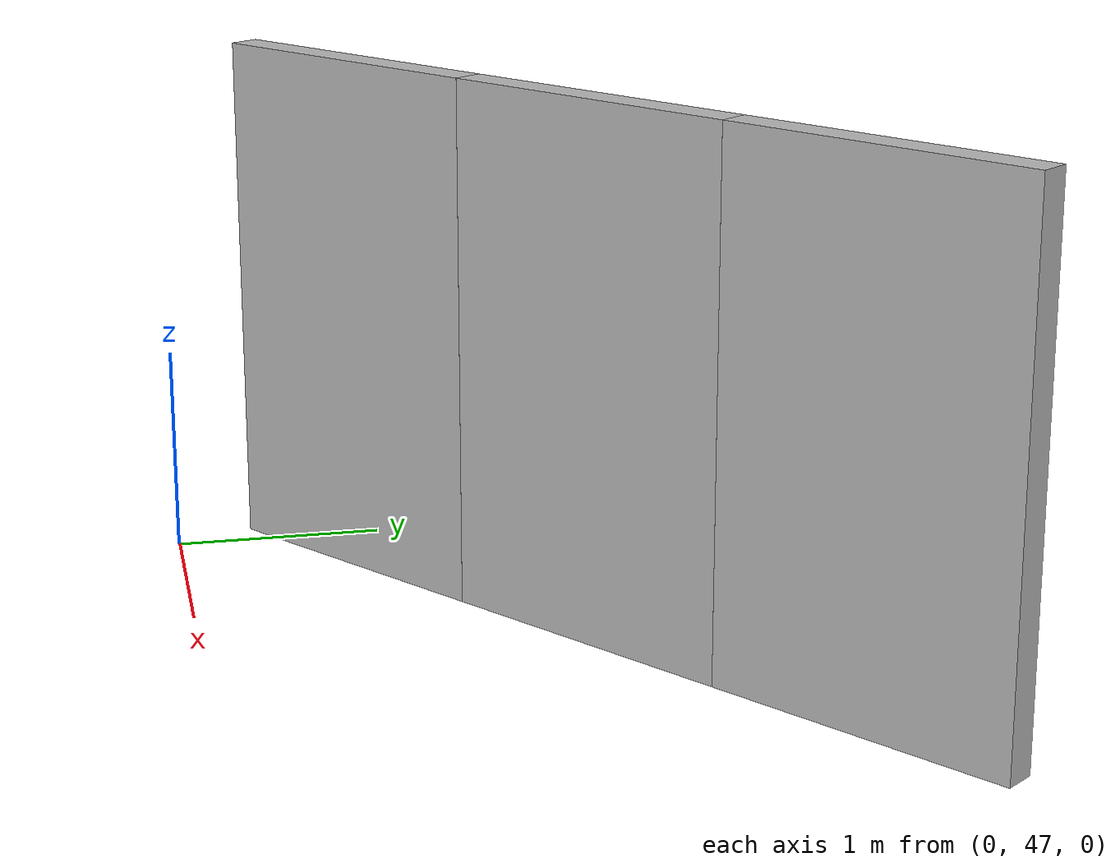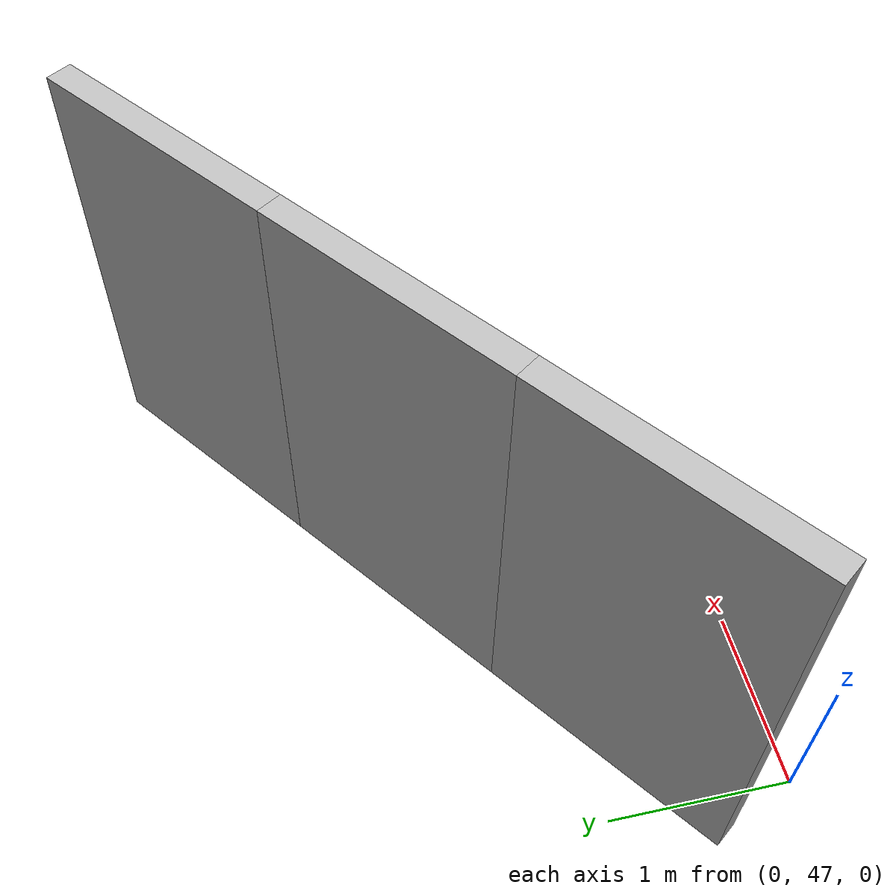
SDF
<?xml version="1.0" ?>
<sdf version="1.6">
  <model name="sps_3706">
    <pose frame="">0 0 0 0 -0 0</pose>
    <static>1</static>
    <self_collide>0</self_collide>
    <allow_auto_disable>0</allow_auto_disable>
    <link name="Wall7838">
      <kinematic>0</kinematic>
      <gravity>1</gravity>
      <self_collide>0</self_collide>
      <collision name="collision">
        <geometry>
          <box>
            <size>1.50299 0.15 2.5</size>
          </box>
        </geometry>
        <pose frame="">0 0 0 0 -0 0</pose>
      </collision>
      <visual name="visual">
        <geometry>
          <box>
            <size>1.50299 0.15 2.5</size>
          </box>
        </geometry>
        <pose frame="">0 0 0 0 -0 0</pose>
        <cast_shadows>1</cast_shadows>
        <transparency>0.0</transparency>
      </visual>
      <pose frame="">0.410453 47.8741 1.25 0 -0 0.631424</pose>
    </link>
    <link name="Wall7839">
      <kinematic>0</kinematic>
      <gravity>1</gravity>
      <self_collide>0</self_collide>
      <collision name="collision">
        <geometry>
          <box>
            <size>1.50301 0.15 2.5</size>
          </box>
        </geometry>
        <pose frame="">0 0 0 0 -0 0</pose>
      </collision>
      <visual name="visual">
        <geometry>
          <box>
            <size>1.50301 0.15 2.5</size>
          </box>
        </geometry>
        <pose frame="">0 0 0 0 -0 0</pose>
        <cast_shadows>1</cast_shadows>
        <transparency>0.0</transparency>
      </visual>
      <pose frame="">1.62286 48.7624 1.25 0 -0 0.633227</pose>
    </link>
    <link name="Wall7840">
      <kinematic>0</kinematic>
      <gravity>1</gravity>
      <self_collide>0</self_collide>
      <collision name="collision">
        <geometry>
          <box>
            <size>1.50322 0.15 2.5</size>
          </box>
        </geometry>
        <pose frame="">0 0 0 0 -0 0</pose>
      </collision>
      <visual name="visual">
        <geometry>
          <box>
            <size>1.50322 0.15 2.5</size>
          </box>
        </geometry>
        <pose frame="">0 0 0 0 -0 0</pose>
        <cast_shadows>1</cast_shadows>
        <transparency>0.0</transparency>
      </visual>
      <pose frame="">2.83395 49.6527 1.25 0 -0 0.634585</pose>
    </link>
  </model>
</sdf>
